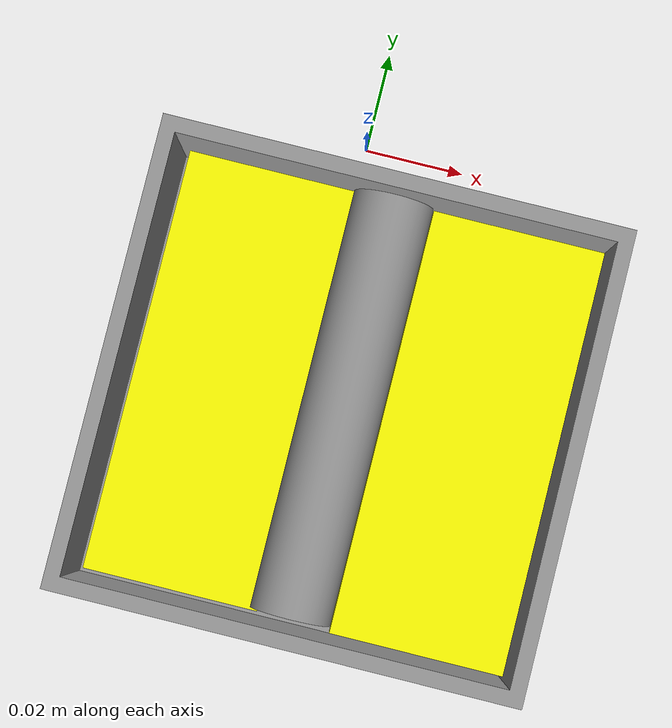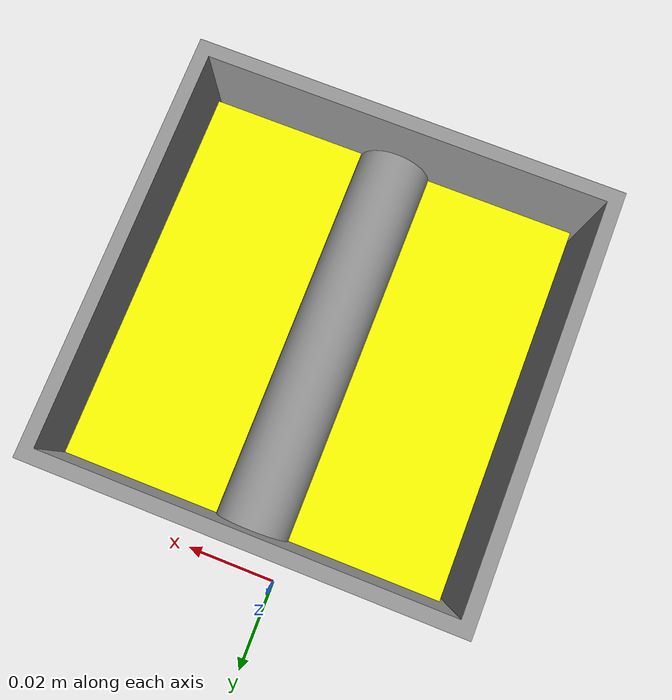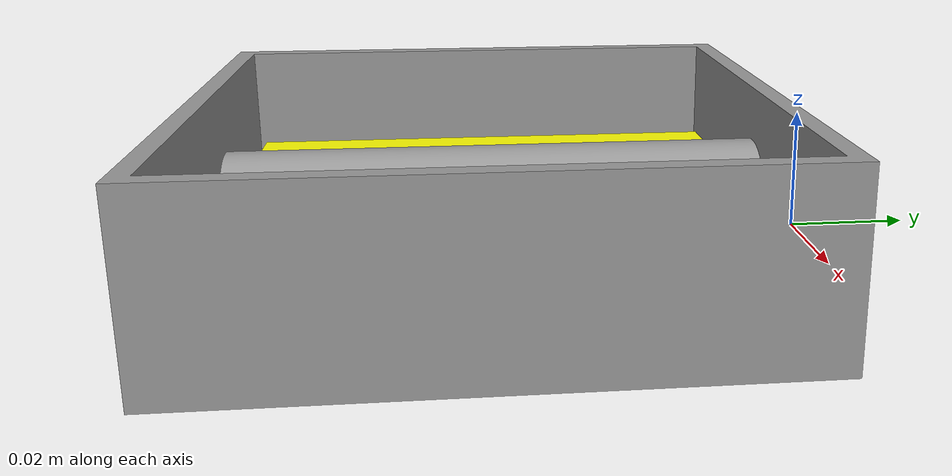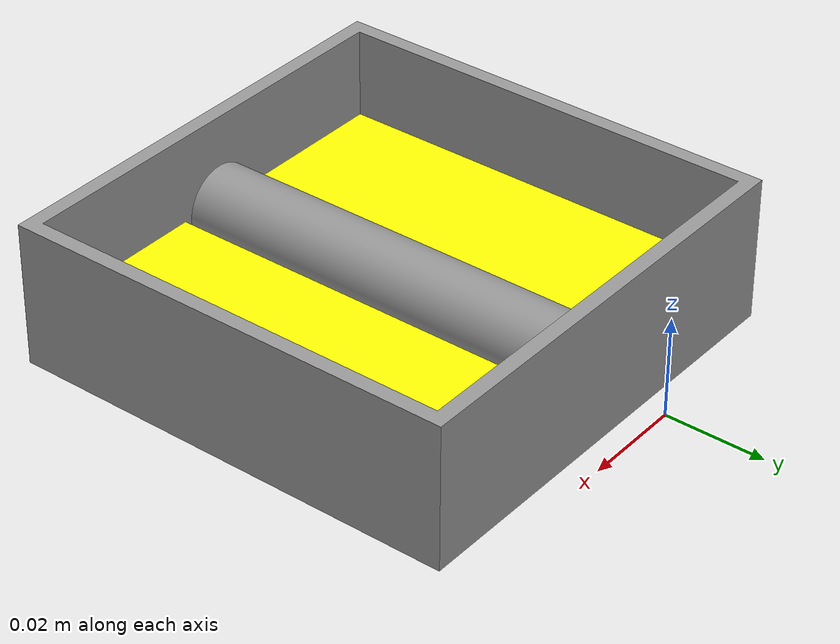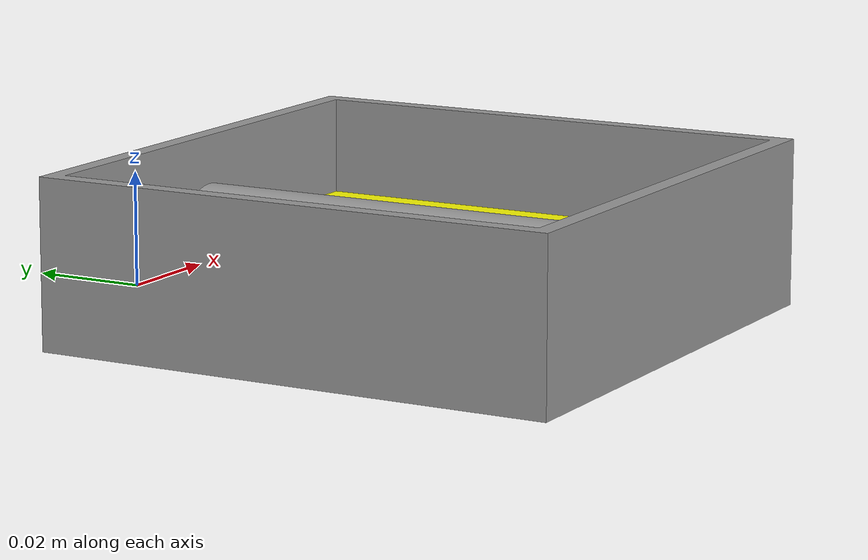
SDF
<?xml version='1.0'?>
<sdf version='1.7'>
  <model name='Provino_vero'>
    <link name='link_0'>
      <inertial>
        <mass>1</mass>
        <inertia>
          <ixx>0.166667</ixx>
          <ixy>0</ixy>
          <ixz>0</ixz>
          <iyy>0.166667</iyy>
          <iyz>0</iyz>
          <izz>0.166667</izz>
        </inertia>
        <pose>0 0 0 0 -0 0</pose>
      </inertial>
      <pose>0.008389 -0.053713 0 2e-06 -4e-06 0</pose>
      <gravity>1</gravity>
      <self_collide>0</self_collide>
      <kinematic>0</kinematic>
      <enable_wind>0</enable_wind>
      <visual name='visual'>
        <pose>0 0 0 0 -0 0</pose>
        <geometry>
          <mesh>
            <uri>/home/umberto/catkin2_ws/src/robotics_project/Provino_vero/meshes/Case.dae</uri>
            <scale>1 1 1</scale>
          </mesh>
        </geometry>
        <material>
          <lighting>1</lighting>
          <script>
            <uri>file://media/materials/scripts/gazebo.material</uri>
            <name>Gazebo/Grey</name>
          </script>
          <shader type='pixel'>
            <normal_map>__default__</normal_map>
          </shader>
          <ambient>1 1 1 1</ambient>
          <diffuse>1 1 1 1</diffuse>
          <specular>1 1 1 1</specular>
          <emissive>1 1 1 1</emissive>
        </material>
        <transparency>0</transparency>
        <cast_shadows>1</cast_shadows>
      </visual>
      <collision name='collision'>
        <laser_retro>0</laser_retro>
        <max_contacts>10</max_contacts>
        <pose>0 0 0 0 -0 0</pose>
        <geometry>
          <mesh>
            <uri>/home/umberto/catkin2_ws/src/robotics_project/Provino_vero/meshes/Case.dae</uri>
            <scale>1 1 1</scale>
          </mesh>
        </geometry>
        <surface>
          <friction>
            <ode>
              <mu>1</mu>
              <mu2>1</mu2>
              <fdir1>0 0 0</fdir1>
              <slip1>0</slip1>
              <slip2>0</slip2>
            </ode>
            <torsional>
              <coefficient>1</coefficient>
              <patch_radius>0</patch_radius>
              <surface_radius>0</surface_radius>
              <use_patch_radius>1</use_patch_radius>
              <ode>
                <slip>0</slip>
              </ode>
            </torsional>
          </friction>
          <bounce>
            <restitution_coefficient>0</restitution_coefficient>
            <threshold>1e+06</threshold>
          </bounce>
          <contact>
            <collide_without_contact>0</collide_without_contact>
            <collide_without_contact_bitmask>1</collide_without_contact_bitmask>
            <collide_bitmask>1</collide_bitmask>
            <ode>
              <soft_cfm>0</soft_cfm>
              <soft_erp>0.2</soft_erp>
              <kp>1e+13</kp>
              <kd>1</kd>
              <max_vel>0.01</max_vel>
              <min_depth>0</min_depth>
            </ode>
            <bullet>
              <split_impulse>1</split_impulse>
              <split_impulse_penetration_threshold>-0.01</split_impulse_penetration_threshold>
              <soft_cfm>0</soft_cfm>
              <soft_erp>0.2</soft_erp>
              <kp>1e+13</kp>
              <kd>1</kd>
            </bullet>
          </contact>
        </surface>
      </collision>
    </link>
    <link name='link_0_0'>
      <inertial>
        <mass>1</mass>
        <inertia>
          <ixx>0.166667</ixx>
          <ixy>0</ixy>
          <ixz>0</ixz>
          <iyy>0.166667</iyy>
          <iyz>0</iyz>
          <izz>0.166667</izz>
        </inertia>
        <pose>0 0 0 0 -0 0</pose>
      </inertial>
      <pose>0.068646 -0.043538 0 3e-06 -4e-06 0</pose>
      <self_collide>0</self_collide>
      <enable_wind>0</enable_wind>
      <kinematic>0</kinematic>
      <gravity>1</gravity>
      <visual name='visual'>
        <pose>0 0 0 0 -0 0</pose>
        <geometry>
          <mesh>
            <uri>/home/umberto/catkin2_ws/src/robotics_project/Provino_vero/meshes/Mesh3.dae</uri>
            <scale>1 1 1</scale>
          </mesh>
        </geometry>
        <material>
          <lighting>1</lighting>
          <script>
            <uri>file://media/materials/scripts/gazebo.material</uri>
            <name>Gazebo/Grey</name>
          </script>
          <shader type='pixel'>
            <normal_map>__default__</normal_map>
          </shader>
          <emissive>1 1 0 1</emissive>
          <ambient>1 1 0 1</ambient>
          <diffuse>1 1 0 1</diffuse>
          <specular>1 1 0 1</specular>
        </material>
        <transparency>0</transparency>
        <cast_shadows>1</cast_shadows>
      </visual>
      <collision name='collision'>
        <laser_retro>0</laser_retro>
        <max_contacts>10</max_contacts>
        <pose>0 0 0 0 -0 0</pose>
        <geometry>
          <mesh>
            <uri>/home/umberto/catkin2_ws/src/robotics_project/Provino_vero/meshes/Mesh3.dae</uri>
            <scale>1 1 1</scale>
          </mesh>
        </geometry>
        <surface>
          <friction>
            <ode>
              <mu>1</mu>
              <mu2>1</mu2>
              <fdir1>0 0 0</fdir1>
              <slip1>0</slip1>
              <slip2>0</slip2>
            </ode>
            <torsional>
              <coefficient>1</coefficient>
              <patch_radius>0</patch_radius>
              <surface_radius>0</surface_radius>
              <use_patch_radius>1</use_patch_radius>
              <ode>
                <slip>0</slip>
              </ode>
            </torsional>
          </friction>
          <bounce>
            <restitution_coefficient>0</restitution_coefficient>
            <threshold>1e+06</threshold>
          </bounce>
          <contact>
            <collide_without_contact>0</collide_without_contact>
            <collide_without_contact_bitmask>1</collide_without_contact_bitmask>
            <collide_bitmask>1</collide_bitmask>
            <ode>
              <soft_cfm>0</soft_cfm>
              <soft_erp>0.2</soft_erp>
              <kp>1e+13</kp>
              <kd>1</kd>
              <max_vel>0.01</max_vel>
              <min_depth>0</min_depth>
            </ode>
            <bullet>
              <split_impulse>1</split_impulse>
              <split_impulse_penetration_threshold>-0.01</split_impulse_penetration_threshold>
              <soft_cfm>0</soft_cfm>
              <soft_erp>0.2</soft_erp>
              <kp>1e+13</kp>
              <kd>1</kd>
            </bullet>
          </contact>
        </surface>
      </collision>
    </link>
    <link name='link_1'>
      <inertial>
        <mass>1</mass>
        <inertia>
          <ixx>0.166667</ixx>
          <ixy>0</ixy>
          <ixz>0</ixz>
          <iyy>0.166667</iyy>
          <iyz>0</iyz>
          <izz>0.166667</izz>
        </inertia>
        <pose>0 0 0 0 -0 0</pose>
      </inertial>
      <pose>-0.031049 -0.042875 0 3e-06 -4e-06 0</pose>
      <self_collide>0</self_collide>
      <enable_wind>0</enable_wind>
      <kinematic>0</kinematic>
      <gravity>1</gravity>
      <visual name='visual'>
        <pose>0 0 0 0 -0 0</pose>
        <geometry>
          <mesh>
            <uri>/home/umberto/catkin2_ws/src/robotics_project/Provino_vero/meshes/Mesh4.dae</uri>
            <scale>1 1 1</scale>
          </mesh>
        </geometry>
        <material>
          <lighting>1</lighting>
          <script>
            <uri>file://media/materials/scripts/gazebo.material</uri>
            <name>Gazebo/Grey</name>
          </script>
          <shader type='pixel'>
            <normal_map>__default__</normal_map>
          </shader>
          <emissive>1 1 0 1</emissive>
          <ambient>1 1 0 1</ambient>
          <diffuse>1 1 0 1</diffuse>
          <specular>1 1 0 1</specular>
        </material>
        <transparency>0</transparency>
        <cast_shadows>1</cast_shadows>
      </visual>
      <collision name='collision'>
        <laser_retro>0</laser_retro>
        <max_contacts>10</max_contacts>
        <pose>0 0 0 0 -0 0</pose>
        <geometry>
          <mesh>
            <uri>/home/umberto/catkin2_ws/src/robotics_project/Provino_vero/meshes/Mesh4.dae</uri>
            <scale>1 1 1</scale>
          </mesh>
        </geometry>
        <surface>
          <friction>
            <ode>
              <mu>1</mu>
              <mu2>1</mu2>
              <fdir1>0 0 0</fdir1>
              <slip1>0</slip1>
              <slip2>0</slip2>
            </ode>
            <torsional>
              <coefficient>1</coefficient>
              <patch_radius>0</patch_radius>
              <surface_radius>0</surface_radius>
              <use_patch_radius>1</use_patch_radius>
              <ode>
                <slip>0</slip>
              </ode>
            </torsional>
          </friction>
          <bounce>
            <restitution_coefficient>0</restitution_coefficient>
            <threshold>1e+06</threshold>
          </bounce>
          <contact>
            <collide_without_contact>0</collide_without_contact>
            <collide_without_contact_bitmask>1</collide_without_contact_bitmask>
            <collide_bitmask>1</collide_bitmask>
            <ode>
              <soft_cfm>0</soft_cfm>
              <soft_erp>0.2</soft_erp>
              <kp>1e+13</kp>
              <kd>1</kd>
              <max_vel>0.01</max_vel>
              <min_depth>0</min_depth>
            </ode>
            <bullet>
              <split_impulse>1</split_impulse>
              <split_impulse_penetration_threshold>-0.01</split_impulse_penetration_threshold>
              <soft_cfm>0</soft_cfm>
              <soft_erp>0.2</soft_erp>
              <kp>1e+13</kp>
              <kd>1</kd>
            </bullet>
          </contact>
        </surface>
      </collision>
    </link>
    <link name='link_2'>
      <inertial>
        <mass>1</mass>
        <inertia>
          <ixx>0.166667</ixx>
          <ixy>0</ixy>
          <ixz>0</ixz>
          <iyy>0.166667</iyy>
          <iyz>0</iyz>
          <izz>0.166667</izz>
        </inertia>
        <pose>0 0 0 0 -0 0</pose>
      </inertial>
      <pose>0.018069 -0.041935 0.0045 0 -0 0</pose>
      <gravity>1</gravity>
      <self_collide>0</self_collide>
      <kinematic>0</kinematic>
      <enable_wind>0</enable_wind>
      <visual name='visual'>
        <pose>0 0 0 0 -0 0</pose>
        <geometry>
          <mesh>
            <uri>/home/umberto/catkin2_ws/src/robotics_project/Provino_vero/meshes/Mesh2.dae</uri>
            <scale>1 1 1</scale>
          </mesh>
        </geometry>
        <material>
          <lighting>1</lighting>
          <script>
            <uri>file://media/materials/scripts/gazebo.material</uri>
            <name>Gazebo/Grey</name>
          </script>
          <shader type='pixel'>
            <normal_map>__default__</normal_map>
          </shader>
          <ambient>0.8 0.8 0.8 0</ambient>
          <diffuse>0.8 0.8 0.8 0</diffuse>
          <specular>0.8 0.8 0.8 1</specular>
          <emissive>0.8 0.8 0.8 1</emissive>
        </material>
        <transparency>0</transparency>
        <cast_shadows>1</cast_shadows>
      </visual>
      <collision name='collision'>
        <laser_retro>0</laser_retro>
        <max_contacts>10</max_contacts>
        <pose>0 0 0 0 -0 0</pose>
        <geometry>
          <mesh>
            <uri>/home/umberto/catkin2_ws/src/robotics_project/Provino_vero/meshes/Mesh2.dae</uri>
            <scale>1 1 1</scale>
          </mesh>
        </geometry>
        <surface>
          <friction>
            <ode>
              <mu>1</mu>
              <mu2>1</mu2>
              <fdir1>0 0 0</fdir1>
              <slip1>0</slip1>
              <slip2>0</slip2>
            </ode>
            <torsional>
              <coefficient>1</coefficient>
              <patch_radius>0</patch_radius>
              <surface_radius>0</surface_radius>
              <use_patch_radius>1</use_patch_radius>
              <ode>
                <slip>0</slip>
              </ode>
            </torsional>
          </friction>
          <bounce>
            <restitution_coefficient>0</restitution_coefficient>
            <threshold>1e+06</threshold>
          </bounce>
          <contact>
            <collide_without_contact>0</collide_without_contact>
            <collide_without_contact_bitmask>1</collide_without_contact_bitmask>
            <collide_bitmask>1</collide_bitmask>
            <ode>
              <soft_cfm>0</soft_cfm>
              <soft_erp>0.2</soft_erp>
              <kp>1e+13</kp>
              <kd>1</kd>
              <max_vel>0.01</max_vel>
              <min_depth>0</min_depth>
            </ode>
            <bullet>
              <split_impulse>1</split_impulse>
              <split_impulse_penetration_threshold>-0.01</split_impulse_penetration_threshold>
              <soft_cfm>0</soft_cfm>
              <soft_erp>0.2</soft_erp>
              <kp>1e+13</kp>
              <kd>1</kd>
            </bullet>
          </contact>
        </surface>
      </collision>
    </link>
    <joint name='link_0_0_JOINT_4' type='fixed'>
      <parent>link_0_0</parent>
      <child>link_0_LINK_FRAME_VISUAL___Z_AXIS</child>
      <pose>0 0 0 0 -0 0</pose>
      <physics>
        <ode>
          <limit>
            <cfm>0</cfm>
            <erp>0.2</erp>
          </limit>
          <suspension>
            <cfm>0</cfm>
            <erp>0.2</erp>
          </suspension>
        </ode>
      </physics>
    </joint>
    <joint name='link_0_0_JOINT_6' type='fixed'>
      <parent>link_0_0</parent>
      <child>link_1</child>
      <pose>0 0 0 0 -0 0</pose>
      <physics>
        <ode>
          <limit>
            <cfm>0</cfm>
            <erp>0.2</erp>
          </limit>
          <suspension>
            <cfm>0</cfm>
            <erp>0.2</erp>
          </suspension>
        </ode>
      </physics>
    </joint>
    <joint name='link_1_JOINT_5' type='fixed'>
      <parent>link_1</parent>
      <child>link_2</child>
      <pose>0 0 0 0 -0 0</pose>
      <physics>
        <ode>
          <limit>
            <cfm>0</cfm>
            <erp>0.2</erp>
          </limit>
          <suspension>
            <cfm>0</cfm>
            <erp>0.2</erp>
          </suspension>
        </ode>
      </physics>
    </joint>
    <static>0</static>
    <allow_auto_disable>1</allow_auto_disable>
  </model>
</sdf>
